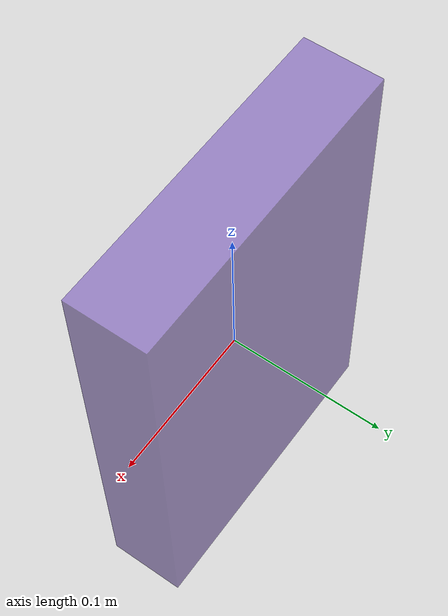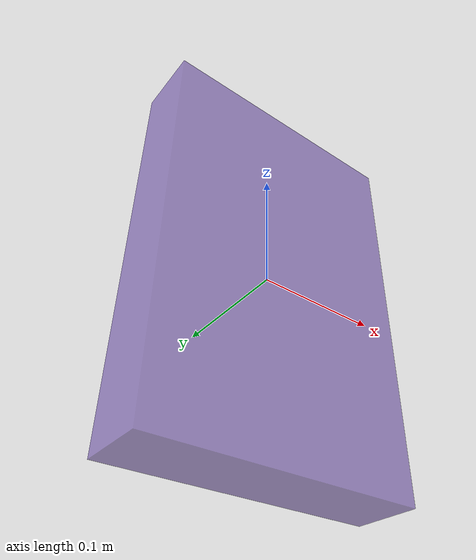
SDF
<?xml version="1.0"?>
<sdf version="1.7">
  <model name="floor_and_boxes">
    <link name="gripper">
      <pose>0 0 0 0 0 0</pose>
      <visual name="gripper_visual">
        <geometry>
          <box>
            <size>0.2 0.05 0.3</size>
          </box>
        </geometry>
        <material>
          <ambient>0.43 0.3 0.7 0.6</ambient>
          <diffuse>0.43 0.3 0.7 0.6</diffuse>
        </material>
      </visual>
      <collision name="gripper_collision">
        <geometry>
          <box>
            <size>0.2 0.05 0.3</size>
          </box>
        </geometry>
        <drake:proximity_properties>
          <drake:compliant_hydroelastic/>
          <drake:hydroelastic_modulus>1e6</drake:hydroelastic_modulus>
          <drake:mesh_resolution_hint>0.01</drake:mesh_resolution_hint>
          <drake:mu_dynamic>1.4</drake:mu_dynamic>
          <drake:mu_static>1.5</drake:mu_static>
          <drake:hunt_crossley_dissipation>5</drake:hunt_crossley_dissipation>
          <drake:surface_speed>0.5</drake:surface_speed>
          <drake:surface_velocity_normal>1 0 0</drake:surface_velocity_normal>
        </drake:proximity_properties>
      </collision>
    </link>
  </model>
</sdf>
